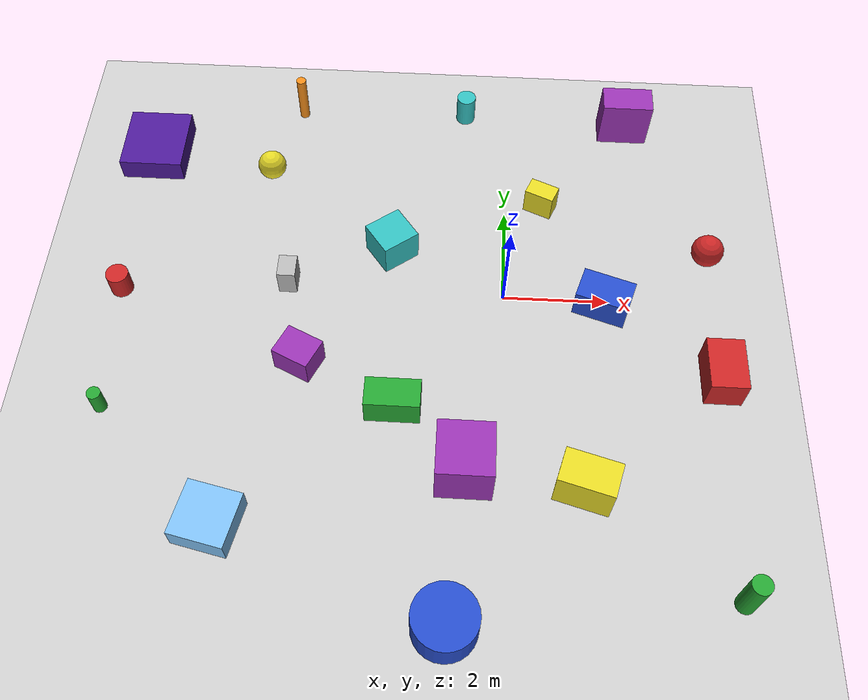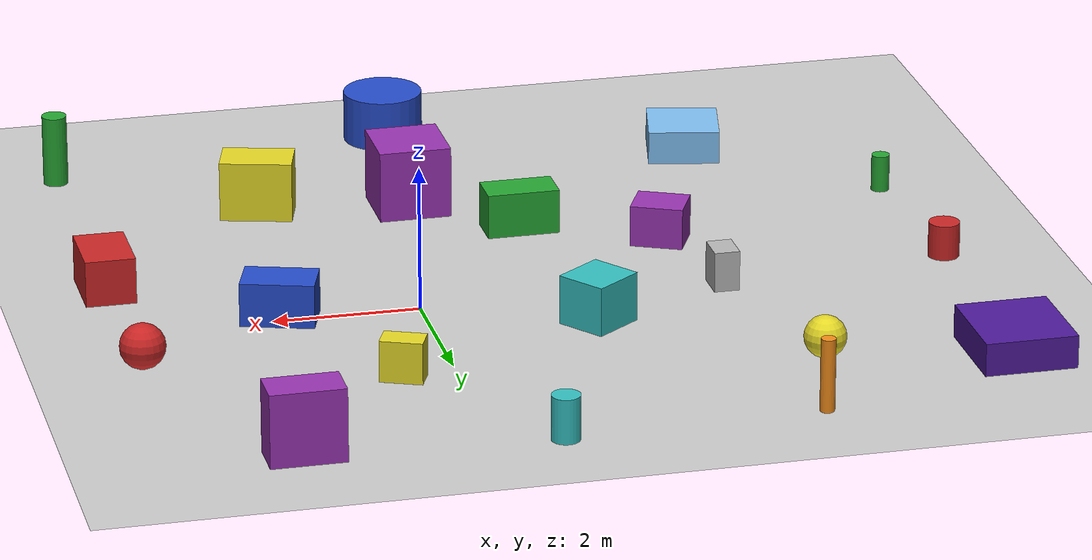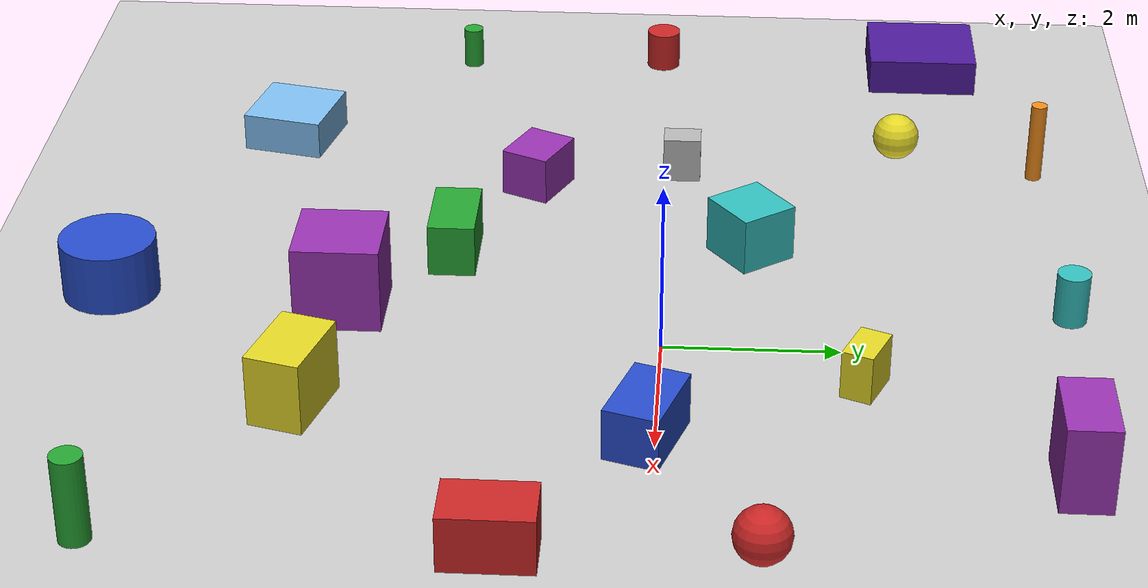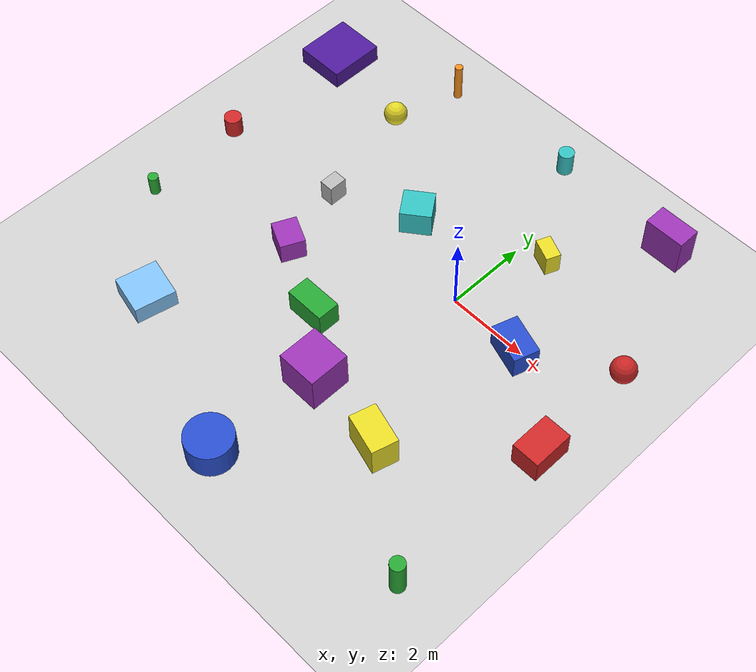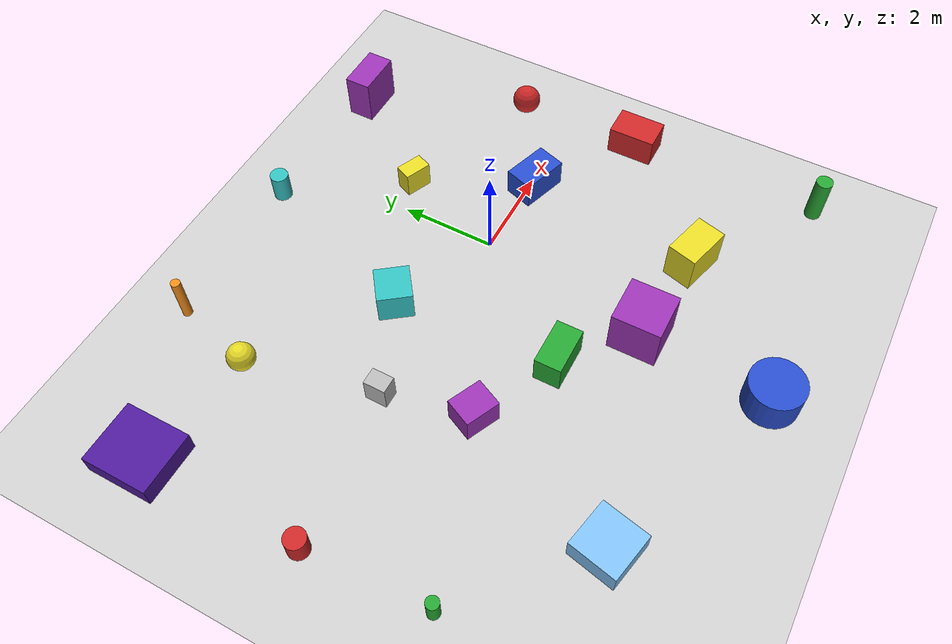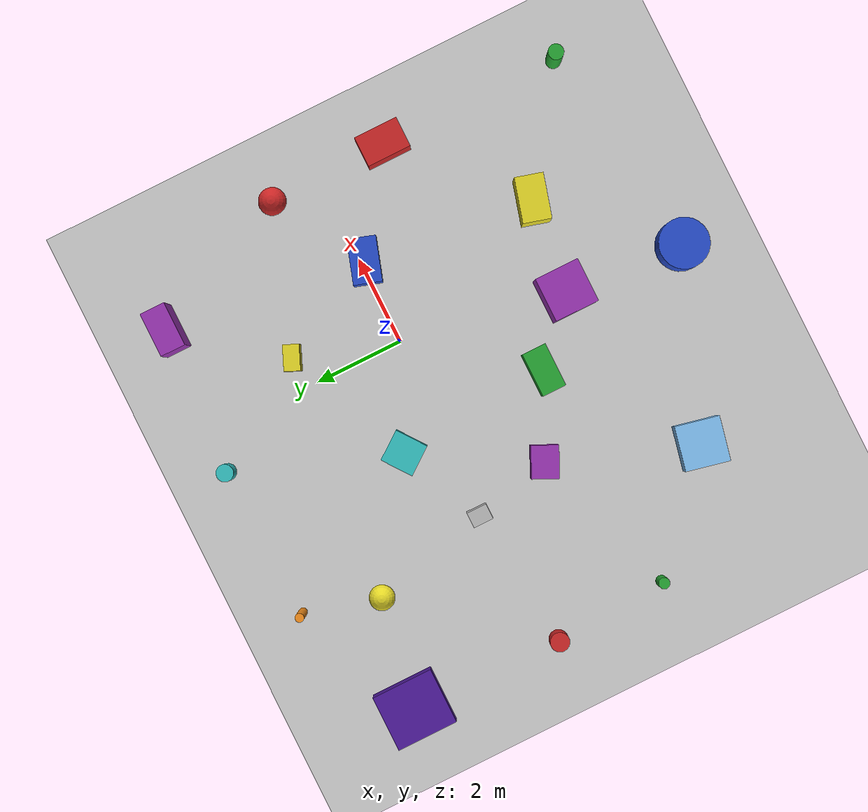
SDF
<sdf version='1.7'>
  <world name='default'>
    <plugin filename="gz-sim-physics-system" name="gz::sim::systems::Physics"></plugin>
    <plugin filename="gz-sim-user-commands-system" name="gz::sim::systems::UserCommands"></plugin>
    <plugin filename="gz-sim-scene-broadcaster-system" name="gz::sim::systems::SceneBroadcaster"></plugin>
    <plugin filename="gz-sim-sensors-system" name="gz::sim::systems::Sensors">
      <render_engine>ogre2</render_engine>
    </plugin>
    <plugin filename="gz-sim-imu-system" name="gz::sim::systems::Imu"></plugin>

    <model name='ground_plane'>
      <static>1</static>
      <link name='link'>
        <collision name='collision'>
          <geometry>
            <plane>
              <normal>0 0 1</normal>
              <size>100 100</size>
            </plane>
          </geometry>
          <surface>
            <friction>
              <ode>
                <mu>100</mu>
                <mu2>50</mu2>
              </ode>
              <torsional>
                <ode/>
              </torsional>
            </friction>
            <contact>
              <ode/>
            </contact>
            <bounce/>
          </surface>
          <max_contacts>10</max_contacts>
        </collision>
        <visual name='visual'>
          <cast_shadows>0</cast_shadows>
          <geometry>
            <plane>
              <normal>0 0 1</normal>
              <size>100 100</size>
            </plane>
          </geometry>
          <material>
            <script>
              <uri>file://media/materials/scripts/gazebo.material</uri>
              <name>Gazebo/Grey</name>
            </script>
          </material>
        </visual>
        <self_collide>0</self_collide>
        <enable_wind>0</enable_wind>
        <kinematic>0</kinematic>
      </link>
    </model>
    <light name='sun' type='directional'>
      <cast_shadows>1</cast_shadows>
      <pose>0 0 10 0 -0 0</pose>
      <diffuse>0.8 0.8 0.8 1</diffuse>
      <specular>0.2 0.2 0.2 1</specular>
      <attenuation>
        <range>1000</range>
        <constant>0.9</constant>
        <linear>0.01</linear>
        <quadratic>0.001</quadratic>
      </attenuation>
      <direction>-0.5 0.1 -0.9</direction>
      <spot>
        <inner_angle>0</inner_angle>
        <outer_angle>0</outer_angle>
        <falloff>0</falloff>
      </spot>
    </light>
    <scene>
      <shadows>0</shadows>
      <ambient>0.4 0.4 0.4 1</ambient>
      <background>0.7 0.7 0.7 1</background>
    </scene>
    <gui fullscreen='0'>
      <camera name='user_camera'>
        <pose>-8.58618 0.314143 3.38183 0 0.478117 -0.338352</pose>
        <view_controller>orbit</view_controller>
        <projection_type>perspective</projection_type>
      </camera>
    </gui>
    <physics type='ode'>
      <real_time_update_rate>1000</real_time_update_rate>
      <max_step_size>0.001</max_step_size>
      <real_time_factor>1</real_time_factor>
      <ode>
        <solver>
          <type>quick</type>
          <iters>150</iters>
          <precon_iters>0</precon_iters>
          <sor>1.4</sor>
          <use_dynamic_moi_rescaling>1</use_dynamic_moi_rescaling>
        </solver>
        <constraints>
          <cfm>1e-05</cfm>
          <erp>0.2</erp>
          <contact_max_correcting_vel>2000</contact_max_correcting_vel>
          <contact_surface_layer>0.01</contact_surface_layer>
        </constraints>
      </ode>
    </physics>
    <gravity>0 0 -9.8</gravity>
    <magnetic_field>6e-06 2.3e-05 -4.2e-05</magnetic_field>
    <atmosphere type='adiabatic'/>
    <audio>
      <device>default</device>
    </audio>
    <wind/>
    <spherical_coordinates>
      <surface_model>EARTH_WGS84</surface_model>
      <latitude_deg>0</latitude_deg>
      <longitude_deg>0</longitude_deg>
      <elevation>0</elevation>
      <heading_deg>0</heading_deg>
    </spherical_coordinates>
    <model name='unit_box'>
      <pose>-3.71754 -1.63246 0.288288 0 0 -0.43998</pose>
      <link name='link'>
        <inertial>
          <mass>1</mass>
          <inertia>
            <ixx>0.166667</ixx>
            <ixy>0</ixy>
            <ixz>0</ixz>
            <iyy>0.166667</iyy>
            <iyz>0</iyz>
            <izz>0.166667</izz>
          </inertia>
          <pose>0 0 0 0 -0 0</pose>
        </inertial>
        <collision name='collision'>
          <geometry>
            <box>
              <size>0.726663 0.604764 0.576577</size>
            </box>
          </geometry>
          <max_contacts>10</max_contacts>
          <surface>
            <contact>
              <ode/>
            </contact>
            <bounce/>
            <friction>
              <torsional>
                <ode/>
              </torsional>
              <ode/>
            </friction>
          </surface>
        </collision>
        <visual name='visual'>
          <geometry>
            <box>
              <size>0.726663 0.604764 0.576577</size>
            </box>
          </geometry>
          <material>
            <script>
              <name>Gazebo/Purple</name>
              <uri>file://media/materials/scripts/gazebo.material</uri>
            </script>
          </material>
        </visual>
        <self_collide>0</self_collide>
        <enable_wind>0</enable_wind>
        <kinematic>0</kinematic>
      </link>
    </model>
    <model name='unit_box_0'>
      <pose>1.879557 -0.096991 0.303421 0 0 -0.313583</pose>
      <link name='link'>
        <inertial>
          <mass>1</mass>
          <inertia>
            <ixx>0.166667</ixx>
            <ixy>0</ixy>
            <ixz>0</ixz>
            <iyy>0.166667</iyy>
            <iyz>0</iyz>
            <izz>0.166667</izz>
          </inertia>
          <pose>0 0 0 0 -0 0</pose>
        </inertial>
        <collision name='collision'>
          <geometry>
            <box>
              <size>1 0.631745 0.606843</size>
            </box>
          </geometry>
          <max_contacts>10</max_contacts>
          <surface>
            <contact>
              <ode/>
            </contact>
            <bounce/>
            <friction>
              <torsional>
                <ode/>
              </torsional>
              <ode/>
            </friction>
          </surface>
        </collision>
        <visual name='visual'>
          <geometry>
            <box>
              <size>1 0.631745 0.606843</size>
            </box>
          </geometry>
          <material>
            <script>
              <name>Gazebo/Blue</name>
              <uri>file://media/materials/scripts/gazebo.material</uri>
            </script>
          </material>
        </visual>
        <self_collide>0</self_collide>
        <enable_wind>0</enable_wind>
        <kinematic>0</kinematic>
      </link>
    </model>
    <model name='unit_box_1'>
      <pose>1.44296 -3.90056 0.419946 0 0 -0.272412</pose>
      <link name='link'>
        <inertial>
          <mass>1</mass>
          <inertia>
            <ixx>0.166667</ixx>
            <ixy>0</ixy>
            <ixz>0</ixz>
            <iyy>0.166667</iyy>
            <iyz>0</iyz>
            <izz>0.166667</izz>
          </inertia>
          <pose>0 0 0 0 -0 0</pose>
        </inertial>
        <collision name='collision'>
          <geometry>
            <box>
              <size>1 0.632476 0.839892</size>
            </box>
          </geometry>
          <max_contacts>10</max_contacts>
          <surface>
            <contact>
              <ode/>
            </contact>
            <bounce/>
            <friction>
              <torsional>
                <ode/>
              </torsional>
              <ode/>
            </friction>
          </surface>
        </collision>
        <visual name='visual'>
          <geometry>
            <box>
              <size>1 0.632476 0.839892</size>
            </box>
          </geometry>
          <material>
            <script>
              <name>Gazebo/Yellow</name>
              <uri>file://media/materials/scripts/gazebo.material</uri>
            </script>
          </material>
        </visual>
        <self_collide>0</self_collide>
        <enable_wind>0</enable_wind>
        <kinematic>0</kinematic>
      </link>
    </model>
    <model name='unit_box_2'>
      <pose>-4.12541 0.131996 0.278689 0 -0 0</pose>
      <link name='link'>
        <inertial>
          <mass>1</mass>
          <inertia>
            <ixx>0.166667</ixx>
            <ixy>0</ixy>
            <ixz>0</ixz>
            <iyy>0.166667</iyy>
            <iyz>0</iyz>
            <izz>0.166667</izz>
          </inertia>
          <pose>0 0 0 0 -0 0</pose>
        </inertial>
        <collision name='collision'>
          <geometry>
            <box>
              <size>0.347514 0.457433 0.557378</size>
            </box>
          </geometry>
          <max_contacts>10</max_contacts>
          <surface>
            <contact>
              <ode/>
            </contact>
            <bounce/>
            <friction>
              <torsional>
                <ode/>
              </torsional>
              <ode/>
            </friction>
          </surface>
        </collision>
        <visual name='visual'>
          <geometry>
            <box>
              <size>0.347514 0.457433 0.557378</size>
            </box>
          </geometry>
          <material>
            <script>
              <name>Gazebo/Ingedo</name>
              <uri>file://media/materials/scripts/gazebo.material</uri>
            </script>
          </material>
        </visual>
        <self_collide>0</self_collide>
        <enable_wind>0</enable_wind>
        <kinematic>0</kinematic>
      </link>
    </model>
    <model name='unit_box_3'>
      <pose>-1.9415 -2.48933 0.311989 0 -0 0</pose>
      <link name='link'>
        <inertial>
          <mass>1</mass>
          <inertia>
            <ixx>0.166667</ixx>
            <ixy>0</ixy>
            <ixz>0</ixz>
            <iyy>0.166667</iyy>
            <iyz>0</iyz>
            <izz>0.166667</izz>
          </inertia>
          <pose>0 0 0 0 -0 0</pose>
        </inertial>
        <collision name='collision'>
          <geometry>
            <box>
              <size>1 0.551399 0.623979</size>
            </box>
          </geometry>
          <max_contacts>10</max_contacts>
          <surface>
            <contact>
              <ode/>
            </contact>
            <bounce/>
            <friction>
              <torsional>
                <ode/>
              </torsional>
              <ode/>
            </friction>
          </surface>
        </collision>
        <visual name='visual'>
          <geometry>
            <box>
              <size>1 0.551399 0.623979</size>
            </box>
          </geometry>
          <material>
            <script>
              <name>Gazebo/Green</name>
              <uri>file://media/materials/scripts/gazebo.material</uri>
            </script>
          </material>
        </visual>
        <self_collide>0</self_collide>
        <enable_wind>0</enable_wind>
        <kinematic>0</kinematic>
      </link>
    </model>
    <model name='unit_box_4'>
      <pose>-2.1924 0.984264 0.340171 0 -0 0.641193</pose>
      <link name='link'>
        <inertial>
          <mass>1</mass>
          <inertia>
            <ixx>0.166667</ixx>
            <ixy>0</ixy>
            <ixz>0</ixz>
            <iyy>0.166667</iyy>
            <iyz>0</iyz>
            <izz>0.166667</izz>
          </inertia>
          <pose>0 0 0 0 -0 0</pose>
        </inertial>
        <collision name='collision'>
          <geometry>
            <box>
              <size>0.750261 0.716712 0.680342</size>
            </box>
          </geometry>
          <max_contacts>10</max_contacts>
          <surface>
            <contact>
              <ode/>
            </contact>
            <bounce/>
            <friction>
              <torsional>
                <ode/>
              </torsional>
              <ode/>
            </friction>
          </surface>
        </collision>
        <visual name='visual'>
          <geometry>
            <box>
              <size>0.750261 0.716712 0.680342</size>
            </box>
          </geometry>
          <material>
            <script>
              <name>Gazebo/Turquoise</name>
              <uri>file://media/materials/scripts/gazebo.material</uri>
            </script>
          </material>
        </visual>
        <self_collide>0</self_collide>
        <enable_wind>0</enable_wind>
        <kinematic>0</kinematic>
      </link>
    </model>
    <model name='unit_box_5'>
      <pose>0.711479 2.23664 0.286404 0 0 -0.403372</pose>
      <link name='link'>
        <inertial>
          <mass>1</mass>
          <inertia>
            <ixx>0.166667</ixx>
            <ixy>0</ixy>
            <ixz>0</ixz>
            <iyy>0.166667</iyy>
            <iyz>0</iyz>
            <izz>0.166667</izz>
          </inertia>
          <pose>0 0 0 0 -0 0</pose>
        </inertial>
        <collision name='collision'>
          <geometry>
            <box>
              <size>0.575672 0.361479 0.572807</size>
            </box>
          </geometry>
          <max_contacts>10</max_contacts>
          <surface>
            <contact>
              <ode/>
            </contact>
            <bounce/>
            <friction>
              <torsional>
                <ode/>
              </torsional>
              <ode/>
            </friction>
          </surface>
        </collision>
        <visual name='visual'>
          <geometry>
            <box>
              <size>0.575672 0.361479 0.572807</size>
            </box>
          </geometry>
          <material>
            <script>
              <name>Gazebo/Yellow</name>
              <uri>file://media/materials/scripts/gazebo.material</uri>
            </script>
          </material>
        </visual>
        <self_collide>0</self_collide>
        <enable_wind>0</enable_wind>
        <kinematic>0</kinematic>
      </link>
    </model>
    <model name='unit_box_6'>
      <pose>3.97231 -1.57044 0.320064 0 -0 0</pose>
      <link name='link'>
        <inertial>
          <mass>1</mass>
          <inertia>
            <ixx>0.166667</ixx>
            <ixy>0</ixy>
            <ixz>0</ixz>
            <iyy>0.166667</iyy>
            <iyz>0</iyz>
            <izz>0.166667</izz>
          </inertia>
          <pose>0 0 0 0 -0 0</pose>
        </inertial>
        <collision name='collision'>
          <geometry>
            <box>
              <size>0.684471 1 0.640128</size>
            </box>
          </geometry>
          <max_contacts>10</max_contacts>
          <surface>
            <contact>
              <ode/>
            </contact>
            <bounce/>
            <friction>
              <torsional>
                <ode/>
              </torsional>
              <ode/>
            </friction>
          </surface>
        </collision>
        <visual name='visual'>
          <geometry>
            <box>
              <size>0.684471 1 0.640128</size>
            </box>
          </geometry>
          <material>
            <script>
              <name>Gazebo/Red</name>
              <uri>file://media/materials/scripts/gazebo.material</uri>
            </script>
          </material>
        </visual>
        <self_collide>0</self_collide>
        <enable_wind>0</enable_wind>
        <kinematic>0</kinematic>
      </link>
    </model>
    <model name='unit_sphere_0'>
      <pose>3.92594 1.11722 0.307976 0 -0 0</pose>
      <link name='link'>
        <inertial>
          <mass>1</mass>
          <inertia>
            <ixx>0.1</ixx>
            <ixy>0</ixy>
            <ixz>0</ixz>
            <iyy>0.1</iyy>
            <iyz>0</iyz>
            <izz>0.1</izz>
          </inertia>
          <pose>0 0 0 0 -0 0</pose>
        </inertial>
        <collision name='collision'>
          <geometry>
            <sphere>
              <radius>0.307976</radius>
            </sphere>
          </geometry>
          <max_contacts>10</max_contacts>
          <surface>
            <contact>
              <ode/>
            </contact>
            <bounce/>
            <friction>
              <torsional>
                <ode/>
              </torsional>
              <ode/>
            </friction>
          </surface>
        </collision>
        <visual name='visual'>
          <geometry>
            <sphere>
              <radius>0.307976</radius>
            </sphere>
          </geometry>
          <material>
            <script>
              <name>Gazebo/RedBright</name>
              <uri>file://media/materials/scripts/gazebo.material</uri>
            </script>
          </material>
        </visual>
        <self_collide>0</self_collide>
        <enable_wind>0</enable_wind>
        <kinematic>0</kinematic>
      </link>
    </model>
    <model name='unit_cylinder'>
      <pose>3.9806 -5.69901 0.499995 -1e-06 1e-06 0</pose>
      <link name='link'>
        <inertial>
          <mass>1</mass>
          <inertia>
            <ixx>0.145833</ixx>
            <ixy>0</ixy>
            <ixz>0</ixz>
            <iyy>0.145833</iyy>
            <iyz>0</iyz>
            <izz>0.125</izz>
          </inertia>
          <pose>0 0 0 0 -0 0</pose>
        </inertial>
        <collision name='collision'>
          <geometry>
            <cylinder>
              <radius>0.172544</radius>
              <length>1</length>
            </cylinder>
          </geometry>
          <max_contacts>10</max_contacts>
          <surface>
            <contact>
              <ode/>
            </contact>
            <bounce/>
            <friction>
              <torsional>
                <ode/>
              </torsional>
              <ode/>
            </friction>
          </surface>
        </collision>
        <visual name='visual'>
          <geometry>
            <cylinder>
              <radius>0.172544</radius>
              <length>1</length>
            </cylinder>
          </geometry>
          <material>
            <script>
              <name>Gazebo/Green</name>
              <uri>file://media/materials/scripts/gazebo.material</uri>
            </script>
          </material>
        </visual>
        <self_collide>0</self_collide>
        <enable_wind>0</enable_wind>
        <kinematic>0</kinematic>
      </link>
    </model>
    <model name='unit_cylinder_0'>
      <pose>-0.851888 -6.37385 0.354879 0 -0 0</pose>
      <link name='link'>
        <inertial>
          <mass>1</mass>
          <inertia>
            <ixx>0.145833</ixx>
            <ixy>0</ixy>
            <ixz>0</ixz>
            <iyy>0.145833</iyy>
            <iyz>0</iyz>
            <izz>0.125</izz>
          </inertia>
          <pose>0 0 0 0 -0 0</pose>
        </inertial>
        <collision name='collision'>
          <geometry>
            <cylinder>
              <radius>0.558195</radius>
              <length>0.709765</length>
            </cylinder>
          </geometry>
          <max_contacts>10</max_contacts>
          <surface>
            <contact>
              <ode/>
            </contact>
            <bounce/>
            <friction>
              <torsional>
                <ode/>
              </torsional>
              <ode/>
            </friction>
          </surface>
        </collision>
        <visual name='visual'>
          <geometry>
            <cylinder>
              <radius>0.558195</radius>
              <length>0.709765</length>
            </cylinder>
          </geometry>
          <material>
            <script>
              <name>Gazebo/Blue</name>
              <uri>file://media/materials/scripts/gazebo.material</uri>
            </script>
          </material>
        </visual>
        <self_collide>0</self_collide>
        <enable_wind>0</enable_wind>
        <kinematic>0</kinematic>
      </link>
    </model>
    <model name='unit_box_7'>
      <pose>-4.87934 -4.8384 0.233957 -0 -0 -0.215382</pose>
      <link name='link'>
        <inertial>
          <mass>1</mass>
          <inertia>
            <ixx>0.166667</ixx>
            <ixy>0</ixy>
            <ixz>0</ixz>
            <iyy>0.166667</iyy>
            <iyz>0</iyz>
            <izz>0.166667</izz>
          </inertia>
          <pose>0 0 0 0 -0 0</pose>
        </inertial>
        <collision name='collision'>
          <geometry>
            <box>
              <size>1 1 0.467914</size>
            </box>
          </geometry>
          <max_contacts>10</max_contacts>
          <surface>
            <contact>
              <ode/>
            </contact>
            <bounce/>
            <friction>
              <torsional>
                <ode/>
              </torsional>
              <ode/>
            </friction>
          </surface>
        </collision>
        <visual name='visual'>
          <geometry>
            <box>
              <size>1 1 0.467914</size>
            </box>
          </geometry>
          <material>
            <script>
              <name>Gazebo/SkyBlue</name>
              <uri>file://media/materials/scripts/gazebo.material</uri>
            </script>
          </material>
        </visual>
        <self_collide>0</self_collide>
        <enable_wind>0</enable_wind>
        <kinematic>0</kinematic>
      </link>
    </model>
    <model name='unit_sphere_1'>
      <pose>-4.78243 2.81317 0.285486 0 -0 0</pose>
      <link name='link'>
        <inertial>
          <mass>1</mass>
          <inertia>
            <ixx>0.1</ixx>
            <ixy>0</ixy>
            <ixz>0</ixz>
            <iyy>0.1</iyy>
            <iyz>0</iyz>
            <izz>0.1</izz>
          </inertia>
          <pose>0 0 0 0 -0 0</pose>
        </inertial>
        <collision name='collision'>
          <geometry>
            <sphere>
              <radius>0.285486</radius>
            </sphere>
          </geometry>
          <max_contacts>10</max_contacts>
          <surface>
            <contact>
              <ode/>
            </contact>
            <bounce/>
            <friction>
              <torsional>
                <ode/>
              </torsional>
              <ode/>
            </friction>
          </surface>
        </collision>
        <visual name='visual'>
          <geometry>
            <sphere>
              <radius>0.285486</radius>
            </sphere>
          </geometry>
          <material>
            <script>
              <name>Gazebo/DarkYellow</name>
              <uri>file://media/materials/scripts/gazebo.material</uri>
            </script>
          </material>
        </visual>
        <self_collide>0</self_collide>
        <enable_wind>0</enable_wind>
        <kinematic>0</kinematic>
      </link>
    </model>
    <model name='unit_box_8'>
      <pose>2.441 4.38732 0.5 0 -0 0</pose>
      <link name='link'>
        <inertial>
          <mass>1</mass>
          <inertia>
            <ixx>0.166667</ixx>
            <ixy>0</ixy>
            <ixz>0</ixz>
            <iyy>0.166667</iyy>
            <iyz>0</iyz>
            <izz>0.166667</izz>
          </inertia>
          <pose>0 0 0 0 -0 0</pose>
        </inertial>
        <collision name='collision'>
          <geometry>
            <box>
              <size>1 0.567615 1</size>
            </box>
          </geometry>
          <max_contacts>10</max_contacts>
          <surface>
            <contact>
              <ode/>
            </contact>
            <bounce/>
            <friction>
              <torsional>
                <ode/>
              </torsional>
              <ode/>
            </friction>
          </surface>
        </collision>
        <visual name='visual'>
          <geometry>
            <box>
              <size>1 0.567615 1</size>
            </box>
          </geometry>
          <material>
            <script>
              <name>Gazebo/Purple</name>
              <uri>file://media/materials/scripts/gazebo.material</uri>
            </script>
          </material>
        </visual>
        <self_collide>0</self_collide>
        <enable_wind>0</enable_wind>
        <kinematic>0</kinematic>
      </link>
    </model>
    <model name='unit_cylinder_1'>
      <pose>-0.867267 4.61295 0.306366 2e-06 2e-06 0</pose>
      <link name='link'>
        <inertial>
          <mass>1</mass>
          <inertia>
            <ixx>0.145833</ixx>
            <ixy>0</ixy>
            <ixz>0</ixz>
            <iyy>0.145833</iyy>
            <iyz>0</iyz>
            <izz>0.125</izz>
          </inertia>
          <pose>0 0 0 0 -0 0</pose>
        </inertial>
        <collision name='collision'>
          <geometry>
            <cylinder>
              <radius>0.19161</radius>
              <length>0.612736</length>
            </cylinder>
          </geometry>
          <max_contacts>10</max_contacts>
          <surface>
            <contact>
              <ode/>
            </contact>
            <bounce/>
            <friction>
              <torsional>
                <ode/>
              </torsional>
              <ode/>
            </friction>
          </surface>
        </collision>
        <visual name='visual'>
          <geometry>
            <cylinder>
              <radius>0.19161</radius>
              <length>0.612736</length>
            </cylinder>
          </geometry>
          <material>
            <script>
              <name>Gazebo/Turquoise</name>
              <uri>file://media/materials/scripts/gazebo.material</uri>
            </script>
          </material>
        </visual>
        <self_collide>0</self_collide>
        <enable_wind>0</enable_wind>
        <kinematic>0</kinematic>
      </link>
    </model>
    <model name='unit_cylinder_2'>
      <pose>-4.32295 4.5121 0.499996 0 0 -2e-06</pose>
      <link name='link'>
        <inertial>
          <mass>1</mass>
          <inertia>
            <ixx>0.145833</ixx>
            <ixy>0</ixy>
            <ixz>0</ixz>
            <iyy>0.145833</iyy>
            <iyz>0</iyz>
            <izz>0.125</izz>
          </inertia>
          <pose>0 0 0 0 -0 0</pose>
        </inertial>
        <collision name='collision'>
          <geometry>
            <cylinder>
              <radius>0.098012</radius>
              <length>1</length>
            </cylinder>
          </geometry>
          <max_contacts>10</max_contacts>
          <surface>
            <contact>
              <ode/>
            </contact>
            <bounce/>
            <friction>
              <torsional>
                <ode/>
              </torsional>
              <ode/>
            </friction>
          </surface>
        </collision>
        <visual name='visual'>
          <geometry>
            <cylinder>
              <radius>0.098012</radius>
              <length>1</length>
            </cylinder>
          </geometry>
          <material>
            <script>
              <name>Gazebo/Orange</name>
              <uri>file://media/materials/scripts/gazebo.material</uri>
            </script>
          </material>
        </visual>
        <self_collide>0</self_collide>
        <enable_wind>0</enable_wind>
        <kinematic>0</kinematic>
      </link>
    </model>
    <model name='unit_box_9'>
      <pose>-7.24239 3.25343 0.225926 0 -0 0</pose>
      <link name='link'>
        <inertial>
          <mass>1</mass>
          <inertia>
            <ixx>0.166667</ixx>
            <ixy>0</ixy>
            <ixz>0</ixz>
            <iyy>0.166667</iyy>
            <iyz>0</iyz>
            <izz>0.166667</izz>
          </inertia>
          <pose>0 0 0 0 -0 0</pose>
        </inertial>
        <collision name='collision'>
          <geometry>
            <box>
              <size>1.25619 1.38595 0.451853</size>
            </box>
          </geometry>
          <max_contacts>10</max_contacts>
          <surface>
            <contact>
              <ode/>
            </contact>
            <bounce/>
            <friction>
              <torsional>
                <ode/>
              </torsional>
              <ode/>
            </friction>
          </surface>
        </collision>
        <visual name='visual'>
          <geometry>
            <box>
              <size>1.25619 1.38595 0.451853</size>
            </box>
          </geometry>
          <material>
            <script>
              <name>Gazebo/Indigo</name>
              <uri>file://media/materials/scripts/gazebo.material</uri>
            </script>
          </material>
        </visual>
        <self_collide>0</self_collide>
        <enable_wind>0</enable_wind>
        <kinematic>0</kinematic>
      </link>
    </model>
    <model name='unit_cylinder_3'>
      <pose>-7.32587 -0.195183 0.246011 1e-06 1e-06 0</pose>
      <link name='link'>
        <inertial>
          <mass>1</mass>
          <inertia>
            <ixx>0.145833</ixx>
            <ixy>0</ixy>
            <ixz>0</ixz>
            <iyy>0.145833</iyy>
            <iyz>0</iyz>
            <izz>0.125</izz>
          </inertia>
          <pose>0 0 0 0 -0 0</pose>
        </inertial>
        <collision name='collision'>
          <geometry>
            <cylinder>
              <radius>0.213795</radius>
              <length>0.492031</length>
            </cylinder>
          </geometry>
          <max_contacts>10</max_contacts>
          <surface>
            <contact>
              <ode/>
            </contact>
            <bounce/>
            <friction>
              <torsional>
                <ode/>
              </torsional>
              <ode/>
            </friction>
          </surface>
        </collision>
        <visual name='visual'>
          <geometry>
            <cylinder>
              <radius>0.213795</radius>
              <length>0.492031</length>
            </cylinder>
          </geometry>
          <material>
            <script>
              <name>Gazebo/Red</name>
              <uri>file://media/materials/scripts/gazebo.material</uri>
            </script>
          </material>
        </visual>
        <self_collide>0</self_collide>
        <enable_wind>0</enable_wind>
        <kinematic>0</kinematic>
      </link>
    </model>
    <model name='unit_cylinder_4'>
      <pose>-7.18892 -2.76199 0.259539 0 -0 0</pose>
      <link name='link'>
        <inertial>
          <mass>1</mass>
          <inertia>
            <ixx>0.145833</ixx>
            <ixy>0</ixy>
            <ixz>0</ixz>
            <iyy>0.145833</iyy>
            <iyz>0</iyz>
            <izz>0.125</izz>
          </inertia>
          <pose>0 0 0 0 -0 0</pose>
        </inertial>
        <collision name='collision'>
          <geometry>
            <cylinder>
              <radius>0.125468</radius>
              <length>0.519091</length>
            </cylinder>
          </geometry>
          <max_contacts>10</max_contacts>
          <surface>
            <contact>
              <ode/>
            </contact>
            <bounce/>
            <friction>
              <torsional>
                <ode/>
              </torsional>
              <ode/>
            </friction>
          </surface>
        </collision>
        <visual name='visual'>
          <geometry>
            <cylinder>
              <radius>0.125468</radius>
              <length>0.519091</length>
            </cylinder>
          </geometry>
          <material>
            <script>
              <name>Gazebo/Green</name>
              <uri>file://media/materials/scripts/gazebo.material</uri>
            </script>
          </material>
        </visual>
        <self_collide>0</self_collide>
        <enable_wind>0</enable_wind>
        <kinematic>0</kinematic>
      </link>
    </model>
    <model name='unit_box_10'>
      <pose>-0.632846 -3.65363 0.5 0 -0 0</pose>
      <link name='link'>
        <inertial>
          <mass>1</mass>
          <inertia>
            <ixx>0.166667</ixx>
            <ixy>0</ixy>
            <ixz>0</ixz>
            <iyy>0.166667</iyy>
            <iyz>0</iyz>
            <izz>0.166667</izz>
          </inertia>
          <pose>0 0 0 0 -0 0</pose>
        </inertial>
        <collision name='collision'>
          <geometry>
            <box>
              <size>1 1 1</size>
            </box>
          </geometry>
          <max_contacts>10</max_contacts>
          <surface>
            <contact>
              <ode/>
            </contact>
            <bounce/>
            <friction>
              <torsional>
                <ode/>
              </torsional>
              <ode/>
            </friction>
          </surface>
        </collision>
        <visual name='visual'>
          <geometry>
            <box>
              <size>1 1 1</size>
            </box>
          </geometry>
          <material>
            <script>
              <name>Gazebo/Purple</name>
              <uri>file://media/materials/scripts/gazebo.material</uri>
            </script>
          </material>
        </visual>
        <self_collide>0</self_collide>
        <enable_wind>0</enable_wind>
        <kinematic>0</kinematic>
      </link>
    </model>
  </world>
</sdf>
